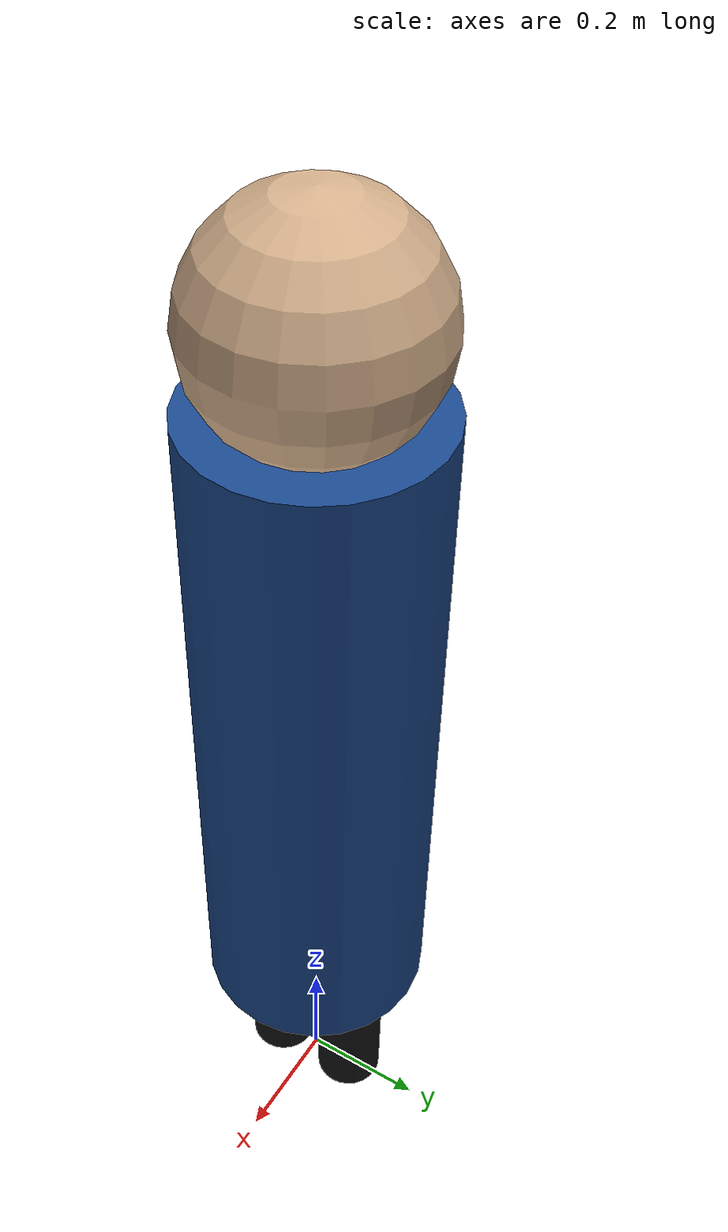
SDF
<?xml version="1.0"?>
<sdf version="1.7">
  <model name="simple_pedestrian">
    <static>true</static>
    <link name="base_link">
      <visual name="torso">
        <pose>0 0 0.85 0 0 0</pose>
        <geometry>
          <cylinder>
            <radius>0.18</radius>
            <length>1.1</length>
          </cylinder>
        </geometry>
        <material>
          <ambient>0.1 0.28 0.55 1</ambient>
          <diffuse>0.1 0.28 0.55 1</diffuse>
        </material>
      </visual>
      <visual name="head">
        <pose>0 0 1.52 0 0 0</pose>
        <geometry>
          <sphere>
            <radius>0.17</radius>
          </sphere>
        </geometry>
        <material>
          <ambient>0.82 0.68 0.54 1</ambient>
          <diffuse>0.82 0.68 0.54 1</diffuse>
        </material>
      </visual>
      <visual name="left_leg">
        <pose>0 -0.07 0.25 0 0 0</pose>
        <geometry>
          <cylinder>
            <radius>0.055</radius>
            <length>0.5</length>
          </cylinder>
        </geometry>
        <material>
          <ambient>0.08 0.08 0.09 1</ambient>
          <diffuse>0.08 0.08 0.09 1</diffuse>
        </material>
      </visual>
      <visual name="right_leg">
        <pose>0 0.07 0.25 0 0 0</pose>
        <geometry>
          <cylinder>
            <radius>0.055</radius>
            <length>0.5</length>
          </cylinder>
        </geometry>
        <material>
          <ambient>0.08 0.08 0.09 1</ambient>
          <diffuse>0.08 0.08 0.09 1</diffuse>
        </material>
      </visual>
      <collision name="body_collision">
        <pose>0 0 0.8 0 0 0</pose>
        <geometry>
          <cylinder>
            <radius>0.22</radius>
            <length>1.6</length>
          </cylinder>
        </geometry>
      </collision>
    </link>
  </model>
</sdf>
